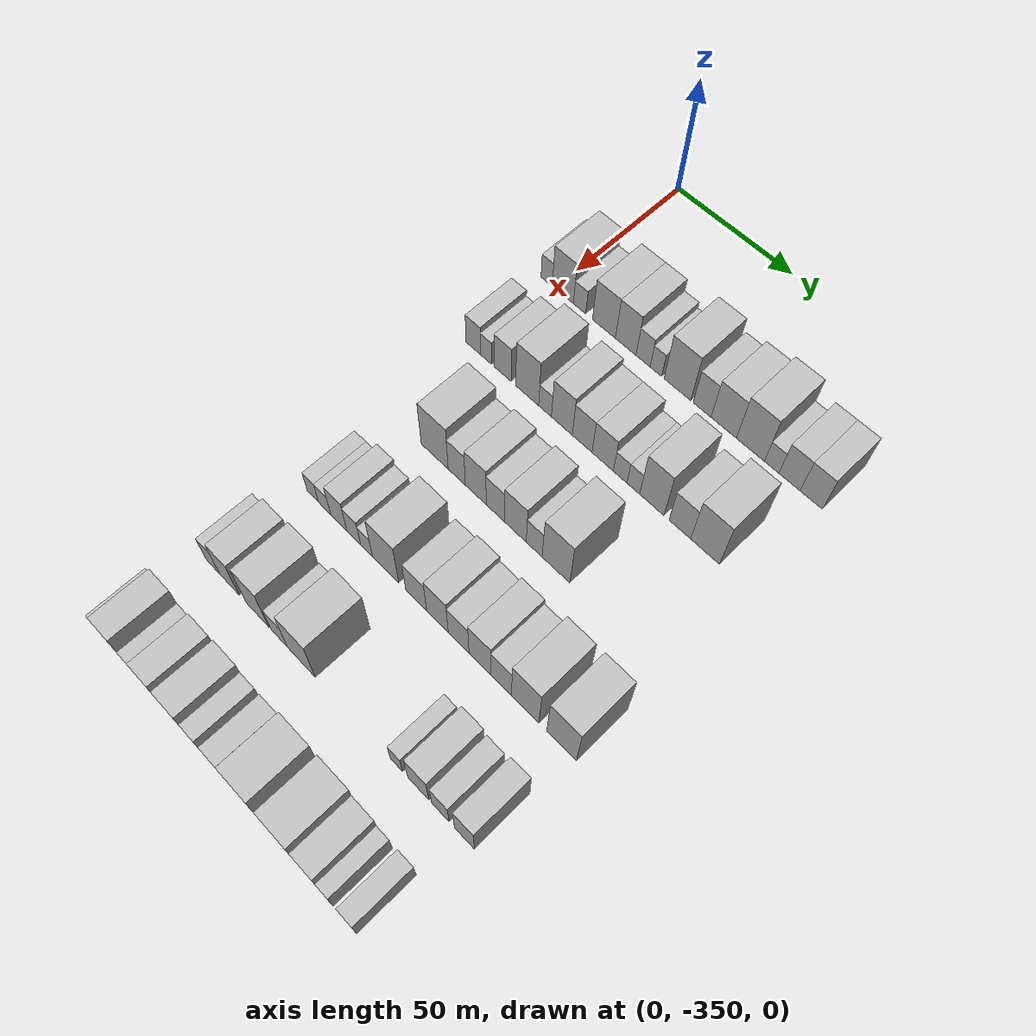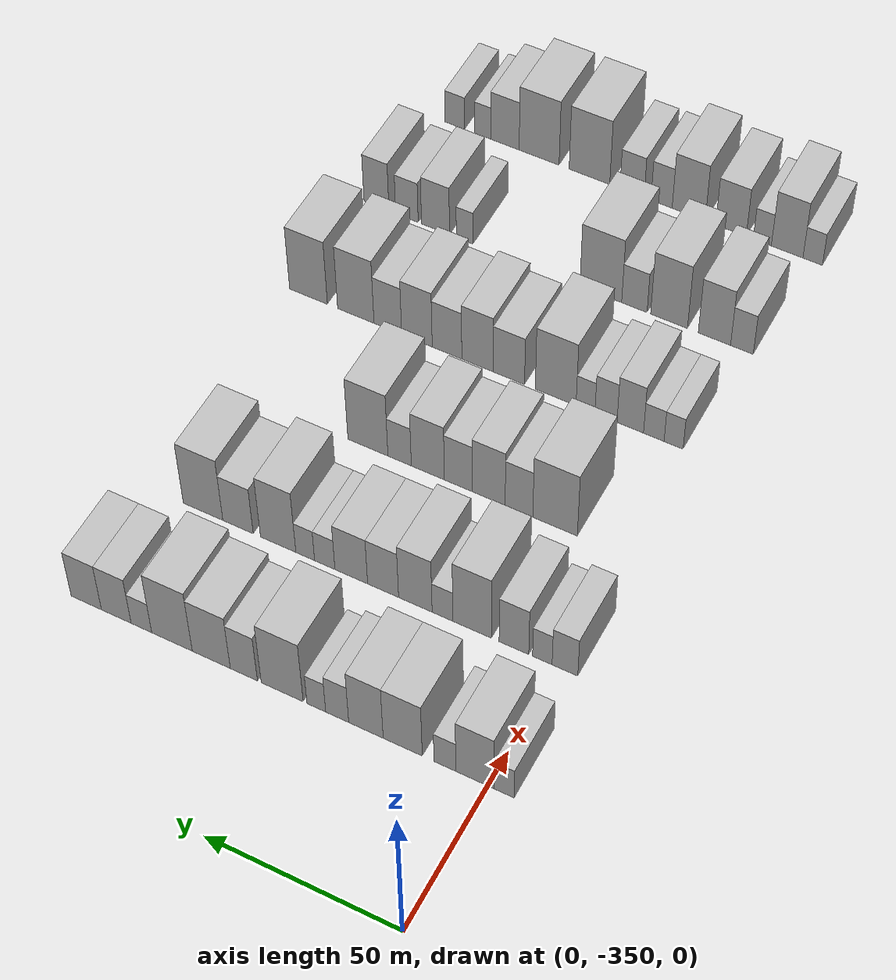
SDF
<sdf version="1.6">
 <world name="default">
  <model name="building_19">
   <static>1</static>
   <pose>50.0000 -353.9644 0 0.000000 0.000000 0.000000</pose>
   <link name="link">
    <pose>0 0 6.00 0 0 0</pose>
    <collision name="collision"><geometry><box><size>20.0000 5.1448 12.0000</size></box></geometry></collision>
    <visual name="visual">
     <cast_shadows>0</cast_shadows>
     <geometry><box><size>20.0000 5.1448 12.0000</size></box></geometry>
     <material>
      <script>
       <uri>model://HANNAS_wall/materials/scripts</uri>
       <uri>model://HANNAS_wall/materials/textures</uri>
       <name>vrc/HANNAS_wall</name>
      </script>
     </material>
    </visual>
   </link>
  </model>
  <model name="building_20">
   <static>1</static>
   <pose>50.0000 -346.6164 0 0.000000 0.000000 0.000000</pose>
   <link name="link">
    <pose>0 0 10.50 0 0 0</pose>
    <collision name="collision"><geometry><box><size>20.0000 9.5511 21.0000</size></box></geometry></collision>
    <visual name="visual">
     <cast_shadows>0</cast_shadows>
     <geometry><box><size>20.0000 9.5511 21.0000</size></box></geometry>
     <material>
      <script>
       <uri>model://HANNAS_wall/materials/scripts</uri>
       <uri>model://HANNAS_wall/materials/textures</uri>
       <name>vrc/HANNAS_wall</name>
      </script>
     </material>
    </visual>
   </link>
  </model>
  <model name="building_21">
   <static>1</static>
   <pose>50.0000 -339.0628 0 0.000000 0.000000 0.000000</pose>
   <link name="link">
    <pose>0 0 6.00 0 0 0</pose>
    <collision name="collision"><geometry><box><size>20.0000 5.5561 12.0000</size></box></geometry></collision>
    <visual name="visual">
     <cast_shadows>0</cast_shadows>
     <geometry><box><size>20.0000 5.5561 12.0000</size></box></geometry>
     <material>
      <script>
       <uri>model://HANNAS_wall/materials/scripts</uri>
       <uri>model://HANNAS_wall/materials/textures</uri>
       <name>vrc/HANNAS_wall</name>
      </script>
     </material>
    </visual>
   </link>
  </model>
  <model name="building_22">
   <static>1</static>
   <pose>50.0000 -328.2652 0 0.000000 0.000000 0.000000</pose>
   <link name="link">
    <pose>0 0 10.50 0 0 0</pose>
    <collision name="collision"><geometry><box><size>20.0000 10.0391 21.0000</size></box></geometry></collision>
    <visual name="visual">
     <cast_shadows>0</cast_shadows>
     <geometry><box><size>20.0000 10.0391 21.0000</size></box></geometry>
     <material>
      <script>
       <uri>model://HANNAS_wall/materials/scripts</uri>
       <uri>model://HANNAS_wall/materials/textures</uri>
       <name>vrc/HANNAS_wall</name>
      </script>
     </material>
    </visual>
   </link>
  </model>
  <model name="building_23">
   <static>1</static>
   <pose>50.0000 -318.7859 0 0.000000 0.000000 0.000000</pose>
   <link name="link">
    <pose>0 0 10.50 0 0 0</pose>
    <collision name="collision"><geometry><box><size>20.0000 8.9194 21.0000</size></box></geometry></collision>
    <visual name="visual">
     <cast_shadows>0</cast_shadows>
     <geometry><box><size>20.0000 8.9194 21.0000</size></box></geometry>
     <material>
      <script>
       <uri>model://HANNAS_wall/materials/scripts</uri>
       <uri>model://HANNAS_wall/materials/textures</uri>
       <name>vrc/HANNAS_wall</name>
      </script>
     </material>
    </visual>
   </link>
  </model>
  <model name="building_24">
   <static>1</static>
   <pose>50.0000 -311.3256 0 0.000000 0.000000 0.000000</pose>
   <link name="link">
    <pose>0 0 7.50 0 0 0</pose>
    <collision name="collision"><geometry><box><size>20.0000 6.0012 15.0000</size></box></geometry></collision>
    <visual name="visual">
     <cast_shadows>0</cast_shadows>
     <geometry><box><size>20.0000 6.0012 15.0000</size></box></geometry>
     <material>
      <script>
       <uri>model://HANNAS_wall/materials/scripts</uri>
       <uri>model://HANNAS_wall/materials/textures</uri>
       <name>vrc/HANNAS_wall</name>
      </script>
     </material>
    </visual>
   </link>
  </model>
  <model name="building_25">
   <static>1</static>
   <pose>50.0000 -305.8745 0 0.000000 0.000000 0.000000</pose>
   <link name="link">
    <pose>0 0 6.00 0 0 0</pose>
    <collision name="collision"><geometry><box><size>20.0000 4.9010 12.0000</size></box></geometry></collision>
    <visual name="visual">
     <cast_shadows>0</cast_shadows>
     <geometry><box><size>20.0000 4.9010 12.0000</size></box></geometry>
     <material>
      <script>
       <uri>model://HANNAS_wall/materials/scripts</uri>
       <uri>model://HANNAS_wall/materials/textures</uri>
       <name>vrc/HANNAS_wall</name>
      </script>
     </material>
    </visual>
   </link>
  </model>
  <model name="building_26">
   <static>1</static>
   <pose>50.0000 -296.8805 0 0.000000 0.000000 0.000000</pose>
   <link name="link">
    <pose>0 0 12.00 0 0 0</pose>
    <collision name="collision"><geometry><box><size>20.0000 11.0871 24.0000</size></box></geometry></collision>
    <visual name="visual">
     <cast_shadows>0</cast_shadows>
     <geometry><box><size>20.0000 11.0871 24.0000</size></box></geometry>
     <material>
      <script>
       <uri>model://HANNAS_wall/materials/scripts</uri>
       <uri>model://HANNAS_wall/materials/textures</uri>
       <name>vrc/HANNAS_wall</name>
      </script>
     </material>
    </visual>
   </link>
  </model>
  <model name="building_27">
   <static>1</static>
   <pose>50.0000 -286.7191 0 0.000000 0.000000 0.000000</pose>
   <link name="link">
    <pose>0 0 9.00 0 0 0</pose>
    <collision name="collision"><geometry><box><size>20.0000 7.2356 18.0000</size></box></geometry></collision>
    <visual name="visual">
     <cast_shadows>0</cast_shadows>
     <geometry><box><size>20.0000 7.2356 18.0000</size></box></geometry>
     <material>
      <script>
       <uri>model://HANNAS_wall/materials/scripts</uri>
       <uri>model://HANNAS_wall/materials/textures</uri>
       <name>vrc/HANNAS_wall</name>
      </script>
     </material>
    </visual>
   </link>
  </model>
  <model name="building_28">
   <static>1</static>
   <pose>50.0000 -277.9937 0 0.000000 0.000000 0.000000</pose>
   <link name="link">
    <pose>0 0 10.50 0 0 0</pose>
    <collision name="collision"><geometry><box><size>20.0000 10.2153 21.0000</size></box></geometry></collision>
    <visual name="visual">
     <cast_shadows>0</cast_shadows>
     <geometry><box><size>20.0000 10.2153 21.0000</size></box></geometry>
     <material>
      <script>
       <uri>model://HANNAS_wall/materials/scripts</uri>
       <uri>model://HANNAS_wall/materials/textures</uri>
       <name>vrc/HANNAS_wall</name>
      </script>
     </material>
    </visual>
   </link>
  </model>
  <model name="building_29">
   <static>1</static>
   <pose>50.0000 -267.3749 0 0.000000 0.000000 0.000000</pose>
   <link name="link">
    <pose>0 0 12.00 0 0 0</pose>
    <collision name="collision"><geometry><box><size>20.0000 11.0223 24.0000</size></box></geometry></collision>
    <visual name="visual">
     <cast_shadows>0</cast_shadows>
     <geometry><box><size>20.0000 11.0223 24.0000</size></box></geometry>
     <material>
      <script>
       <uri>model://HANNAS_wall/materials/scripts</uri>
       <uri>model://HANNAS_wall/materials/textures</uri>
       <name>vrc/HANNAS_wall</name>
      </script>
     </material>
    </visual>
   </link>
  </model>
  <model name="building_30">
   <static>1</static>
   <pose>50.0000 -259.0522 0 0.000000 0.000000 0.000000</pose>
   <link name="link">
    <pose>0 0 6.00 0 0 0</pose>
    <collision name="collision"><geometry><box><size>20.0000 5.6230 12.0000</size></box></geometry></collision>
    <visual name="visual">
     <cast_shadows>0</cast_shadows>
     <geometry><box><size>20.0000 5.6230 12.0000</size></box></geometry>
     <material>
      <script>
       <uri>model://HANNAS_wall/materials/scripts</uri>
       <uri>model://HANNAS_wall/materials/textures</uri>
       <name>vrc/HANNAS_wall</name>
      </script>
     </material>
    </visual>
   </link>
  </model>
  <model name="building_31">
   <static>1</static>
   <pose>50.0000 -252.1641 0 0.000000 0.000000 0.000000</pose>
   <link name="link">
    <pose>0 0 9.00 0 0 0</pose>
    <collision name="collision"><geometry><box><size>20.0000 8.1533 18.0000</size></box></geometry></collision>
    <visual name="visual">
     <cast_shadows>0</cast_shadows>
     <geometry><box><size>20.0000 8.1533 18.0000</size></box></geometry>
     <material>
      <script>
       <uri>model://HANNAS_wall/materials/scripts</uri>
       <uri>model://HANNAS_wall/materials/textures</uri>
       <name>vrc/HANNAS_wall</name>
      </script>
     </material>
    </visual>
   </link>
  </model>
  <model name="building_32">
   <static>1</static>
   <pose>50.0000 -243.8982 0 0.000000 0.000000 0.000000</pose>
   <link name="link">
    <pose>0 0 9.00 0 0 0</pose>
    <collision name="collision"><geometry><box><size>20.0000 8.3785 18.0000</size></box></geometry></collision>
    <visual name="visual">
     <cast_shadows>0</cast_shadows>
     <geometry><box><size>20.0000 8.3785 18.0000</size></box></geometry>
     <material>
      <script>
       <uri>model://HANNAS_wall/materials/scripts</uri>
       <uri>model://HANNAS_wall/materials/textures</uri>
       <name>vrc/HANNAS_wall</name>
      </script>
     </material>
    </visual>
   </link>
  </model>
  <model name="building_150">
   <static>1</static>
   <pose>85.0000 -351.8388 0 0.000000 0.000000 0.000000</pose>
   <link name="link">
    <pose>0 0 7.50 0 0 0</pose>
    <collision name="collision"><geometry><box><size>20.0000 6.6140 15.0000</size></box></geometry></collision>
    <visual name="visual">
     <cast_shadows>0</cast_shadows>
     <geometry><box><size>20.0000 6.6140 15.0000</size></box></geometry>
     <material>
      <script>
       <uri>model://HANNAS_wall/materials/scripts</uri>
       <uri>model://HANNAS_wall/materials/textures</uri>
       <name>vrc/HANNAS_wall</name>
      </script>
     </material>
    </visual>
   </link>
  </model>
  <model name="building_151">
   <static>1</static>
   <pose>85.0000 -346.0177 0 0.000000 0.000000 0.000000</pose>
   <link name="link">
    <pose>0 0 6.00 0 0 0</pose>
    <collision name="collision"><geometry><box><size>20.0000 5.0283 12.0000</size></box></geometry></collision>
    <visual name="visual">
     <cast_shadows>0</cast_shadows>
     <geometry><box><size>20.0000 5.0283 12.0000</size></box></geometry>
     <material>
      <script>
       <uri>model://HANNAS_wall/materials/scripts</uri>
       <uri>model://HANNAS_wall/materials/textures</uri>
       <name>vrc/HANNAS_wall</name>
      </script>
     </material>
    </visual>
   </link>
  </model>
  <model name="building_152">
   <static>1</static>
   <pose>85.0000 -338.6510 0 0.000000 0.000000 0.000000</pose>
   <link name="link">
    <pose>0 0 9.00 0 0 0</pose>
    <collision name="collision"><geometry><box><size>20.0000 7.7050 18.0000</size></box></geometry></collision>
    <visual name="visual">
     <cast_shadows>0</cast_shadows>
     <geometry><box><size>20.0000 7.7050 18.0000</size></box></geometry>
     <material>
      <script>
       <uri>model://HANNAS_wall/materials/scripts</uri>
       <uri>model://HANNAS_wall/materials/textures</uri>
       <name>vrc/HANNAS_wall</name>
      </script>
     </material>
    </visual>
   </link>
  </model>
  <model name="building_153">
   <static>1</static>
   <pose>85.0000 -327.7500 0 0.000000 0.000000 0.000000</pose>
   <link name="link">
    <pose>0 0 12.00 0 0 0</pose>
    <collision name="collision"><geometry><box><size>20.0000 10.0971 24.0000</size></box></geometry></collision>
    <visual name="visual">
     <cast_shadows>0</cast_shadows>
     <geometry><box><size>20.0000 10.0971 24.0000</size></box></geometry>
     <material>
      <script>
       <uri>model://HANNAS_wall/materials/scripts</uri>
       <uri>model://HANNAS_wall/materials/textures</uri>
       <name>vrc/HANNAS_wall</name>
      </script>
     </material>
    </visual>
   </link>
  </model>
  <model name="building_154">
   <static>1</static>
   <pose>85.0000 -319.9447 0 0.000000 0.000000 0.000000</pose>
   <link name="link">
    <pose>0 0 6.00 0 0 0</pose>
    <collision name="collision"><geometry><box><size>20.0000 5.5135 12.0000</size></box></geometry></collision>
    <visual name="visual">
     <cast_shadows>0</cast_shadows>
     <geometry><box><size>20.0000 5.5135 12.0000</size></box></geometry>
     <material>
      <script>
       <uri>model://HANNAS_wall/materials/scripts</uri>
       <uri>model://HANNAS_wall/materials/textures</uri>
       <name>vrc/HANNAS_wall</name>
      </script>
     </material>
    </visual>
   </link>
  </model>
  <model name="building_155">
   <static>1</static>
   <pose>85.0000 -312.7263 0 0.000000 0.000000 0.000000</pose>
   <link name="link">
    <pose>0 0 10.50 0 0 0</pose>
    <collision name="collision"><geometry><box><size>20.0000 8.9234 21.0000</size></box></geometry></collision>
    <visual name="visual">
     <cast_shadows>0</cast_shadows>
     <geometry><box><size>20.0000 8.9234 21.0000</size></box></geometry>
     <material>
      <script>
       <uri>model://HANNAS_wall/materials/scripts</uri>
       <uri>model://HANNAS_wall/materials/textures</uri>
       <name>vrc/HANNAS_wall</name>
      </script>
     </material>
    </visual>
   </link>
  </model>
  <model name="building_156">
   <static>1</static>
   <pose>85.0000 -304.1106 0 0.000000 0.000000 0.000000</pose>
   <link name="link">
    <pose>0 0 9.00 0 0 0</pose>
    <collision name="collision"><geometry><box><size>20.0000 8.3079 18.0000</size></box></geometry></collision>
    <visual name="visual">
     <cast_shadows>0</cast_shadows>
     <geometry><box><size>20.0000 8.3079 18.0000</size></box></geometry>
     <material>
      <script>
       <uri>model://HANNAS_wall/materials/scripts</uri>
       <uri>model://HANNAS_wall/materials/textures</uri>
       <name>vrc/HANNAS_wall</name>
      </script>
     </material>
    </visual>
   </link>
  </model>
  <model name="building_157">
   <static>1</static>
   <pose>85.0000 -295.5395 0 0.000000 0.000000 0.000000</pose>
   <link name="link">
    <pose>0 0 9.00 0 0 0</pose>
    <collision name="collision"><geometry><box><size>20.0000 8.8343 18.0000</size></box></geometry></collision>
    <visual name="visual">
     <cast_shadows>0</cast_shadows>
     <geometry><box><size>20.0000 8.8343 18.0000</size></box></geometry>
     <material>
      <script>
       <uri>model://HANNAS_wall/materials/scripts</uri>
       <uri>model://HANNAS_wall/materials/textures</uri>
       <name>vrc/HANNAS_wall</name>
      </script>
     </material>
    </visual>
   </link>
  </model>
  <model name="building_158">
   <static>1</static>
   <pose>85.0000 -288.3594 0 0.000000 0.000000 0.000000</pose>
   <link name="link">
    <pose>0 0 6.00 0 0 0</pose>
    <collision name="collision"><geometry><box><size>20.0000 5.5260 12.0000</size></box></geometry></collision>
    <visual name="visual">
     <cast_shadows>0</cast_shadows>
     <geometry><box><size>20.0000 5.5260 12.0000</size></box></geometry>
     <material>
      <script>
       <uri>model://HANNAS_wall/materials/scripts</uri>
       <uri>model://HANNAS_wall/materials/textures</uri>
       <name>vrc/HANNAS_wall</name>
      </script>
     </material>
    </visual>
   </link>
  </model>
  <model name="building_159">
   <static>1</static>
   <pose>85.0000 -283.0335 0 0.000000 0.000000 0.000000</pose>
   <link name="link">
    <pose>0 0 6.00 0 0 0</pose>
    <collision name="collision"><geometry><box><size>20.0000 5.1257 12.0000</size></box></geometry></collision>
    <visual name="visual">
     <cast_shadows>0</cast_shadows>
     <geometry><box><size>20.0000 5.1257 12.0000</size></box></geometry>
     <material>
      <script>
       <uri>model://HANNAS_wall/materials/scripts</uri>
       <uri>model://HANNAS_wall/materials/textures</uri>
       <name>vrc/HANNAS_wall</name>
      </script>
     </material>
    </visual>
   </link>
  </model>
  <model name="building_160">
   <static>1</static>
   <pose>85.0000 -275.6094 0 0.000000 0.000000 0.000000</pose>
   <link name="link">
    <pose>0 0 12.00 0 0 0</pose>
    <collision name="collision"><geometry><box><size>20.0000 9.7226 24.0000</size></box></geometry></collision>
    <visual name="visual">
     <cast_shadows>0</cast_shadows>
     <geometry><box><size>20.0000 9.7226 24.0000</size></box></geometry>
     <material>
      <script>
       <uri>model://HANNAS_wall/materials/scripts</uri>
       <uri>model://HANNAS_wall/materials/textures</uri>
       <name>vrc/HANNAS_wall</name>
      </script>
     </material>
    </visual>
   </link>
  </model>
  <model name="building_161">
   <static>1</static>
   <pose>85.0000 -264.5301 0 0.000000 0.000000 0.000000</pose>
   <link name="link">
    <pose>0 0 9.00 0 0 0</pose>
    <collision name="collision"><geometry><box><size>20.0000 8.4359 18.0000</size></box></geometry></collision>
    <visual name="visual">
     <cast_shadows>0</cast_shadows>
     <geometry><box><size>20.0000 8.4359 18.0000</size></box></geometry>
     <material>
      <script>
       <uri>model://HANNAS_wall/materials/scripts</uri>
       <uri>model://HANNAS_wall/materials/textures</uri>
       <name>vrc/HANNAS_wall</name>
      </script>
     </material>
    </visual>
   </link>
  </model>
  <model name="building_162">
   <static>1</static>
   <pose>85.0000 -254.7841 0 0.000000 0.000000 0.000000</pose>
   <link name="link">
    <pose>0 0 12.00 0 0 0</pose>
    <collision name="collision"><geometry><box><size>20.0000 11.0560 24.0000</size></box></geometry></collision>
    <visual name="visual">
     <cast_shadows>0</cast_shadows>
     <geometry><box><size>20.0000 11.0560 24.0000</size></box></geometry>
     <material>
      <script>
       <uri>model://HANNAS_wall/materials/scripts</uri>
       <uri>model://HANNAS_wall/materials/textures</uri>
       <name>vrc/HANNAS_wall</name>
      </script>
     </material>
    </visual>
   </link>
  </model>
  <model name="building_274">
   <static>1</static>
   <pose>120.0000 -331.8995 0 0.000000 0.000000 0.000000</pose>
   <link name="link">
    <pose>0 0 12.00 0 0 0</pose>
    <collision name="collision"><geometry><box><size>20.0000 11.9229 24.0000</size></box></geometry></collision>
    <visual name="visual">
     <cast_shadows>0</cast_shadows>
     <geometry><box><size>20.0000 11.9229 24.0000</size></box></geometry>
     <material>
      <script>
       <uri>model://HANNAS_wall/materials/scripts</uri>
       <uri>model://HANNAS_wall/materials/textures</uri>
       <name>vrc/HANNAS_wall</name>
      </script>
     </material>
    </visual>
   </link>
  </model>
  <model name="building_275">
   <static>1</static>
   <pose>120.0000 -322.2136 0 0.000000 0.000000 0.000000</pose>
   <link name="link">
    <pose>0 0 9.00 0 0 0</pose>
    <collision name="collision"><geometry><box><size>20.0000 7.4489 18.0000</size></box></geometry></collision>
    <visual name="visual">
     <cast_shadows>0</cast_shadows>
     <geometry><box><size>20.0000 7.4489 18.0000</size></box></geometry>
     <material>
      <script>
       <uri>model://HANNAS_wall/materials/scripts</uri>
       <uri>model://HANNAS_wall/materials/textures</uri>
       <name>vrc/HANNAS_wall</name>
      </script>
     </material>
    </visual>
   </link>
  </model>
  <model name="building_276">
   <static>1</static>
   <pose>120.0000 -314.0083 0 0.000000 0.000000 0.000000</pose>
   <link name="link">
    <pose>0 0 10.50 0 0 0</pose>
    <collision name="collision"><geometry><box><size>20.0000 8.9616 21.0000</size></box></geometry></collision>
    <visual name="visual">
     <cast_shadows>0</cast_shadows>
     <geometry><box><size>20.0000 8.9616 21.0000</size></box></geometry>
     <material>
      <script>
       <uri>model://HANNAS_wall/materials/scripts</uri>
       <uri>model://HANNAS_wall/materials/textures</uri>
       <name>vrc/HANNAS_wall</name>
      </script>
     </material>
    </visual>
   </link>
  </model>
  <model name="building_277">
   <static>1</static>
   <pose>120.0000 -305.7389 0 0.000000 0.000000 0.000000</pose>
   <link name="link">
    <pose>0 0 9.00 0 0 0</pose>
    <collision name="collision"><geometry><box><size>20.0000 7.5772 18.0000</size></box></geometry></collision>
    <visual name="visual">
     <cast_shadows>0</cast_shadows>
     <geometry><box><size>20.0000 7.5772 18.0000</size></box></geometry>
     <material>
      <script>
       <uri>model://HANNAS_wall/materials/scripts</uri>
       <uri>model://HANNAS_wall/materials/textures</uri>
       <name>vrc/HANNAS_wall</name>
      </script>
     </material>
    </visual>
   </link>
  </model>
  <model name="building_278">
   <static>1</static>
   <pose>120.0000 -297.3888 0 0.000000 0.000000 0.000000</pose>
   <link name="link">
    <pose>0 0 10.50 0 0 0</pose>
    <collision name="collision"><geometry><box><size>20.0000 9.1230 21.0000</size></box></geometry></collision>
    <visual name="visual">
     <cast_shadows>0</cast_shadows>
     <geometry><box><size>20.0000 9.1230 21.0000</size></box></geometry>
     <material>
      <script>
       <uri>model://HANNAS_wall/materials/scripts</uri>
       <uri>model://HANNAS_wall/materials/textures</uri>
       <name>vrc/HANNAS_wall</name>
      </script>
     </material>
    </visual>
   </link>
  </model>
  <model name="building_279">
   <static>1</static>
   <pose>120.0000 -289.5791 0 0.000000 0.000000 0.000000</pose>
   <link name="link">
    <pose>0 0 7.50 0 0 0</pose>
    <collision name="collision"><geometry><box><size>20.0000 6.4964 15.0000</size></box></geometry></collision>
    <visual name="visual">
     <cast_shadows>0</cast_shadows>
     <geometry><box><size>20.0000 6.4964 15.0000</size></box></geometry>
     <material>
      <script>
       <uri>model://HANNAS_wall/materials/scripts</uri>
       <uri>model://HANNAS_wall/materials/textures</uri>
       <name>vrc/HANNAS_wall</name>
      </script>
     </material>
    </visual>
   </link>
  </model>
  <model name="building_280">
   <static>1</static>
   <pose>120.0000 -280.7509 0 0.000000 0.000000 0.000000</pose>
   <link name="link">
    <pose>0 0 12.00 0 0 0</pose>
    <collision name="collision"><geometry><box><size>20.0000 11.1599 24.0000</size></box></geometry></collision>
    <visual name="visual">
     <cast_shadows>0</cast_shadows>
     <geometry><box><size>20.0000 11.1599 24.0000</size></box></geometry>
     <material>
      <script>
       <uri>model://HANNAS_wall/materials/scripts</uri>
       <uri>model://HANNAS_wall/materials/textures</uri>
       <name>vrc/HANNAS_wall</name>
      </script>
     </material>
    </visual>
   </link>
  </model>
  <model name="building_396">
   <static>1</static>
   <pose>155.0000 -346.9445 0 0.000000 0.000000 0.000000</pose>
   <link name="link">
    <pose>0 0 6.00 0 0 0</pose>
    <collision name="collision"><geometry><box><size>20.0000 5.1278 12.0000</size></box></geometry></collision>
    <visual name="visual">
     <cast_shadows>0</cast_shadows>
     <geometry><box><size>20.0000 5.1278 12.0000</size></box></geometry>
     <material>
      <script>
       <uri>model://HANNAS_wall/materials/scripts</uri>
       <uri>model://HANNAS_wall/materials/textures</uri>
       <name>vrc/HANNAS_wall</name>
      </script>
     </material>
    </visual>
   </link>
  </model>
  <model name="building_397">
   <static>1</static>
   <pose>155.0000 -341.5956 0 0.000000 0.000000 0.000000</pose>
   <link name="link">
    <pose>0 0 6.00 0 0 0</pose>
    <collision name="collision"><geometry><box><size>20.0000 5.5701 12.0000</size></box></geometry></collision>
    <visual name="visual">
     <cast_shadows>0</cast_shadows>
     <geometry><box><size>20.0000 5.5701 12.0000</size></box></geometry>
     <material>
      <script>
       <uri>model://HANNAS_wall/materials/scripts</uri>
       <uri>model://HANNAS_wall/materials/textures</uri>
       <name>vrc/HANNAS_wall</name>
      </script>
     </material>
    </visual>
   </link>
  </model>
  <model name="building_398">
   <static>1</static>
   <pose>155.0000 -335.1966 0 0.000000 0.000000 0.000000</pose>
   <link name="link">
    <pose>0 0 9.00 0 0 0</pose>
    <collision name="collision"><geometry><box><size>20.0000 7.2279 18.0000</size></box></geometry></collision>
    <visual name="visual">
     <cast_shadows>0</cast_shadows>
     <geometry><box><size>20.0000 7.2279 18.0000</size></box></geometry>
     <material>
      <script>
       <uri>model://HANNAS_wall/materials/scripts</uri>
       <uri>model://HANNAS_wall/materials/textures</uri>
       <name>vrc/HANNAS_wall</name>
      </script>
     </material>
    </visual>
   </link>
  </model>
  <model name="building_399">
   <static>1</static>
   <pose>155.0000 -328.5461 0 0.000000 0.000000 0.000000</pose>
   <link name="link">
    <pose>0 0 7.50 0 0 0</pose>
    <collision name="collision"><geometry><box><size>20.0000 6.0731 15.0000</size></box></geometry></collision>
    <visual name="visual">
     <cast_shadows>0</cast_shadows>
     <geometry><box><size>20.0000 6.0731 15.0000</size></box></geometry>
     <material>
      <script>
       <uri>model://HANNAS_wall/materials/scripts</uri>
       <uri>model://HANNAS_wall/materials/textures</uri>
       <name>vrc/HANNAS_wall</name>
      </script>
     </material>
    </visual>
   </link>
  </model>
  <model name="building_400">
   <static>1</static>
   <pose>155.0000 -322.9132 0 0.000000 0.000000 0.000000</pose>
   <link name="link">
    <pose>0 0 6.00 0 0 0</pose>
    <collision name="collision"><geometry><box><size>20.0000 5.1927 12.0000</size></box></geometry></collision>
    <visual name="visual">
     <cast_shadows>0</cast_shadows>
     <geometry><box><size>20.0000 5.1927 12.0000</size></box></geometry>
     <material>
      <script>
       <uri>model://HANNAS_wall/materials/scripts</uri>
       <uri>model://HANNAS_wall/materials/textures</uri>
       <name>vrc/HANNAS_wall</name>
      </script>
     </material>
    </visual>
   </link>
  </model>
  <model name="building_401">
   <static>1</static>
   <pose>155.0000 -314.6764 0 0.000000 0.000000 0.000000</pose>
   <link name="link">
    <pose>0 0 12.00 0 0 0</pose>
    <collision name="collision"><geometry><box><size>20.0000 11.2809 24.0000</size></box></geometry></collision>
    <visual name="visual">
     <cast_shadows>0</cast_shadows>
     <geometry><box><size>20.0000 11.2809 24.0000</size></box></geometry>
     <material>
      <script>
       <uri>model://HANNAS_wall/materials/scripts</uri>
       <uri>model://HANNAS_wall/materials/textures</uri>
       <name>vrc/HANNAS_wall</name>
      </script>
     </material>
    </visual>
   </link>
  </model>
  <model name="building_402">
   <static>1</static>
   <pose>155.0000 -301.6490 0 0.000000 0.000000 0.000000</pose>
   <link name="link">
    <pose>0 0 9.00 0 0 0</pose>
    <collision name="collision"><geometry><box><size>20.0000 8.7740 18.0000</size></box></geometry></collision>
    <visual name="visual">
     <cast_shadows>0</cast_shadows>
     <geometry><box><size>20.0000 8.7740 18.0000</size></box></geometry>
     <material>
      <script>
       <uri>model://HANNAS_wall/materials/scripts</uri>
       <uri>model://HANNAS_wall/materials/textures</uri>
       <name>vrc/HANNAS_wall</name>
      </script>
     </material>
    </visual>
   </link>
  </model>
  <model name="building_403">
   <static>1</static>
   <pose>155.0000 -292.8273 0 0.000000 0.000000 0.000000</pose>
   <link name="link">
    <pose>0 0 10.50 0 0 0</pose>
    <collision name="collision"><geometry><box><size>20.0000 8.8694 21.0000</size></box></geometry></collision>
    <visual name="visual">
     <cast_shadows>0</cast_shadows>
     <geometry><box><size>20.0000 8.8694 21.0000</size></box></geometry>
     <material>
      <script>
       <uri>model://HANNAS_wall/materials/scripts</uri>
       <uri>model://HANNAS_wall/materials/textures</uri>
       <name>vrc/HANNAS_wall</name>
      </script>
     </material>
    </visual>
   </link>
  </model>
  <model name="building_404">
   <static>1</static>
   <pose>155.0000 -284.1888 0 0.000000 0.000000 0.000000</pose>
   <link name="link">
    <pose>0 0 9.00 0 0 0</pose>
    <collision name="collision"><geometry><box><size>20.0000 8.4075 18.0000</size></box></geometry></collision>
    <visual name="visual">
     <cast_shadows>0</cast_shadows>
     <geometry><box><size>20.0000 8.4075 18.0000</size></box></geometry>
     <material>
      <script>
       <uri>model://HANNAS_wall/materials/scripts</uri>
       <uri>model://HANNAS_wall/materials/textures</uri>
       <name>vrc/HANNAS_wall</name>
      </script>
     </material>
    </visual>
   </link>
  </model>
  <model name="building_405">
   <static>1</static>
   <pose>155.0000 -275.6095 0 0.000000 0.000000 0.000000</pose>
   <link name="link">
    <pose>0 0 10.50 0 0 0</pose>
    <collision name="collision"><geometry><box><size>20.0000 8.7512 21.0000</size></box></geometry></collision>
    <visual name="visual">
     <cast_shadows>0</cast_shadows>
     <geometry><box><size>20.0000 8.7512 21.0000</size></box></geometry>
     <material>
      <script>
       <uri>model://HANNAS_wall/materials/scripts</uri>
       <uri>model://HANNAS_wall/materials/textures</uri>
       <name>vrc/HANNAS_wall</name>
      </script>
     </material>
    </visual>
   </link>
  </model>
  <model name="building_406">
   <static>1</static>
   <pose>155.0000 -267.2447 0 0.000000 0.000000 0.000000</pose>
   <link name="link">
    <pose>0 0 9.00 0 0 0</pose>
    <collision name="collision"><geometry><box><size>20.0000 7.9783 18.0000</size></box></geometry></collision>
    <visual name="visual">
     <cast_shadows>0</cast_shadows>
     <geometry><box><size>20.0000 7.9783 18.0000</size></box></geometry>
     <material>
      <script>
       <uri>model://HANNAS_wall/materials/scripts</uri>
       <uri>model://HANNAS_wall/materials/textures</uri>
       <name>vrc/HANNAS_wall</name>
      </script>
     </material>
    </visual>
   </link>
  </model>
  <model name="building_407">
   <static>1</static>
   <pose>155.0000 -257.9760 0 0.000000 0.000000 0.000000</pose>
   <link name="link">
    <pose>0 0 12.00 0 0 0</pose>
    <collision name="collision"><geometry><box><size>20.0000 10.5592 24.0000</size></box></geometry></collision>
    <visual name="visual">
     <cast_shadows>0</cast_shadows>
     <geometry><box><size>20.0000 10.5592 24.0000</size></box></geometry>
     <material>
      <script>
       <uri>model://HANNAS_wall/materials/scripts</uri>
       <uri>model://HANNAS_wall/materials/textures</uri>
       <name>vrc/HANNAS_wall</name>
      </script>
     </material>
    </visual>
   </link>
  </model>
  <model name="building_408">
   <static>1</static>
   <pose>155.0000 -244.1624 0 0.000000 0.000000 0.000000</pose>
   <link name="link">
    <pose>0 0 12.00 0 0 0</pose>
    <collision name="collision"><geometry><box><size>20.0000 11.0680 24.0000</size></box></geometry></collision>
    <visual name="visual">
     <cast_shadows>0</cast_shadows>
     <geometry><box><size>20.0000 11.0680 24.0000</size></box></geometry>
     <material>
      <script>
       <uri>model://HANNAS_wall/materials/scripts</uri>
       <uri>model://HANNAS_wall/materials/textures</uri>
       <name>vrc/HANNAS_wall</name>
      </script>
     </material>
    </visual>
   </link>
  </model>
  <model name="building_519">
   <static>1</static>
   <pose>190.0000 -349.6428 0 0.000000 0.000000 0.000000</pose>
   <link name="link">
    <pose>0 0 7.50 0 0 0</pose>
    <collision name="collision"><geometry><box><size>20.0000 6.2556 15.0000</size></box></geometry></collision>
    <visual name="visual">
     <cast_shadows>0</cast_shadows>
     <geometry><box><size>20.0000 6.2556 15.0000</size></box></geometry>
     <material>
      <script>
       <uri>model://HANNAS_wall/materials/scripts</uri>
       <uri>model://HANNAS_wall/materials/textures</uri>
       <name>vrc/HANNAS_wall</name>
      </script>
     </material>
    </visual>
   </link>
  </model>
  <model name="building_520">
   <static>1</static>
   <pose>190.0000 -342.0464 0 0.000000 0.000000 0.000000</pose>
   <link name="link">
    <pose>0 0 10.50 0 0 0</pose>
    <collision name="collision"><geometry><box><size>20.0000 8.9371 21.0000</size></box></geometry></collision>
    <visual name="visual">
     <cast_shadows>0</cast_shadows>
     <geometry><box><size>20.0000 8.9371 21.0000</size></box></geometry>
     <material>
      <script>
       <uri>model://HANNAS_wall/materials/scripts</uri>
       <uri>model://HANNAS_wall/materials/textures</uri>
       <name>vrc/HANNAS_wall</name>
      </script>
     </material>
    </visual>
   </link>
  </model>
  <model name="building_521">
   <static>1</static>
   <pose>190.0000 -329.4251 0 0.000000 0.000000 0.000000</pose>
   <link name="link">
    <pose>0 0 12.00 0 0 0</pose>
    <collision name="collision"><geometry><box><size>20.0000 10.3054 24.0000</size></box></geometry></collision>
    <visual name="visual">
     <cast_shadows>0</cast_shadows>
     <geometry><box><size>20.0000 10.3054 24.0000</size></box></geometry>
     <material>
      <script>
       <uri>model://HANNAS_wall/materials/scripts</uri>
       <uri>model://HANNAS_wall/materials/textures</uri>
       <name>vrc/HANNAS_wall</name>
      </script>
     </material>
    </visual>
   </link>
  </model>
  <model name="building_522">
   <static>1</static>
   <pose>190.0000 -319.6870 0 0.000000 0.000000 0.000000</pose>
   <link name="link">
    <pose>0 0 7.50 0 0 0</pose>
    <collision name="collision"><geometry><box><size>20.0000 7.1708 15.0000</size></box></geometry></collision>
    <visual name="visual">
     <cast_shadows>0</cast_shadows>
     <geometry><box><size>20.0000 7.1708 15.0000</size></box></geometry>
     <material>
      <script>
       <uri>model://HANNAS_wall/materials/scripts</uri>
       <uri>model://HANNAS_wall/materials/textures</uri>
       <name>vrc/HANNAS_wall</name>
      </script>
     </material>
    </visual>
   </link>
  </model>
  <model name="building_523">
   <static>1</static>
   <pose>190.0000 -310.1738 0 0.000000 0.000000 0.000000</pose>
   <link name="link">
    <pose>0 0 12.00 0 0 0</pose>
    <collision name="collision"><geometry><box><size>20.0000 11.8557 24.0000</size></box></geometry></collision>
    <visual name="visual">
     <cast_shadows>0</cast_shadows>
     <geometry><box><size>20.0000 11.8557 24.0000</size></box></geometry>
     <material>
      <script>
       <uri>model://HANNAS_wall/materials/scripts</uri>
       <uri>model://HANNAS_wall/materials/textures</uri>
       <name>vrc/HANNAS_wall</name>
      </script>
     </material>
    </visual>
   </link>
  </model>
  <model name="building_524">
   <static>1</static>
   <pose>190.0000 -270.9185 0 0.000000 0.000000 0.000000</pose>
   <link name="link">
    <pose>0 0 6.00 0 0 0</pose>
    <collision name="collision"><geometry><box><size>20.0000 4.8850 12.0000</size></box></geometry></collision>
    <visual name="visual">
     <cast_shadows>0</cast_shadows>
     <geometry><box><size>20.0000 4.8850 12.0000</size></box></geometry>
     <material>
      <script>
       <uri>model://HANNAS_wall/materials/scripts</uri>
       <uri>model://HANNAS_wall/materials/textures</uri>
       <name>vrc/HANNAS_wall</name>
      </script>
     </material>
    </visual>
   </link>
  </model>
  <model name="building_525">
   <static>1</static>
   <pose>190.0000 -262.3436 0 0.000000 0.000000 0.000000</pose>
   <link name="link">
    <pose>0 0 9.00 0 0 0</pose>
    <collision name="collision"><geometry><box><size>20.0000 8.2649 18.0000</size></box></geometry></collision>
    <visual name="visual">
     <cast_shadows>0</cast_shadows>
     <geometry><box><size>20.0000 8.2649 18.0000</size></box></geometry>
     <material>
      <script>
       <uri>model://HANNAS_wall/materials/scripts</uri>
       <uri>model://HANNAS_wall/materials/textures</uri>
       <name>vrc/HANNAS_wall</name>
      </script>
     </material>
    </visual>
   </link>
  </model>
  <model name="building_526">
   <static>1</static>
   <pose>190.0000 -253.8655 0 0.000000 0.000000 0.000000</pose>
   <link name="link">
    <pose>0 0 7.50 0 0 0</pose>
    <collision name="collision"><geometry><box><size>20.0000 6.6913 15.0000</size></box></geometry></collision>
    <visual name="visual">
     <cast_shadows>0</cast_shadows>
     <geometry><box><size>20.0000 6.6913 15.0000</size></box></geometry>
     <material>
      <script>
       <uri>model://HANNAS_wall/materials/scripts</uri>
       <uri>model://HANNAS_wall/materials/textures</uri>
       <name>vrc/HANNAS_wall</name>
      </script>
     </material>
    </visual>
   </link>
  </model>
  <model name="building_527">
   <static>1</static>
   <pose>190.0000 -244.7907 0 0.000000 0.000000 0.000000</pose>
   <link name="link">
    <pose>0 0 9.00 0 0 0</pose>
    <collision name="collision"><geometry><box><size>20.0000 7.4584 18.0000</size></box></geometry></collision>
    <visual name="visual">
     <cast_shadows>0</cast_shadows>
     <geometry><box><size>20.0000 7.4584 18.0000</size></box></geometry>
     <material>
      <script>
       <uri>model://HANNAS_wall/materials/scripts</uri>
       <uri>model://HANNAS_wall/materials/textures</uri>
       <name>vrc/HANNAS_wall</name>
      </script>
     </material>
    </visual>
   </link>
  </model>
  <model name="building_647">
   <static>1</static>
   <pose>225.0000 -354.0320 0 0.000000 0.000000 0.000000</pose>
   <link name="link">
    <pose>0 0 6.00 0 0 0</pose>
    <collision name="collision"><geometry><box><size>20.0000 5.4624 12.0000</size></box></geometry></collision>
    <visual name="visual">
     <cast_shadows>0</cast_shadows>
     <geometry><box><size>20.0000 5.4624 12.0000</size></box></geometry>
     <material>
      <script>
       <uri>model://HANNAS_wall/materials/scripts</uri>
       <uri>model://HANNAS_wall/materials/textures</uri>
       <name>vrc/HANNAS_wall</name>
      </script>
     </material>
    </visual>
   </link>
  </model>
  <model name="building_648">
   <static>1</static>
   <pose>225.0000 -346.8407 0 0.000000 0.000000 0.000000</pose>
   <link name="link">
    <pose>0 0 10.50 0 0 0</pose>
    <collision name="collision"><geometry><box><size>20.0000 8.9201 21.0000</size></box></geometry></collision>
    <visual name="visual">
     <cast_shadows>0</cast_shadows>
     <geometry><box><size>20.0000 8.9201 21.0000</size></box></geometry>
     <material>
      <script>
       <uri>model://HANNAS_wall/materials/scripts</uri>
       <uri>model://HANNAS_wall/materials/textures</uri>
       <name>vrc/HANNAS_wall</name>
      </script>
     </material>
    </visual>
   </link>
  </model>
  <model name="building_649">
   <static>1</static>
   <pose>225.0000 -339.8274 0 0.000000 0.000000 0.000000</pose>
   <link name="link">
    <pose>0 0 6.00 0 0 0</pose>
    <collision name="collision"><geometry><box><size>20.0000 5.1066 12.0000</size></box></geometry></collision>
    <visual name="visual">
     <cast_shadows>0</cast_shadows>
     <geometry><box><size>20.0000 5.1066 12.0000</size></box></geometry>
     <material>
      <script>
       <uri>model://HANNAS_wall/materials/scripts</uri>
       <uri>model://HANNAS_wall/materials/textures</uri>
       <name>vrc/HANNAS_wall</name>
      </script>
     </material>
    </visual>
   </link>
  </model>
  <model name="building_650">
   <static>1</static>
   <pose>225.0000 -330.9174 0 0.000000 0.000000 0.000000</pose>
   <link name="link">
    <pose>0 0 9.00 0 0 0</pose>
    <collision name="collision"><geometry><box><size>20.0000 8.7136 18.0000</size></box></geometry></collision>
    <visual name="visual">
     <cast_shadows>0</cast_shadows>
     <geometry><box><size>20.0000 8.7136 18.0000</size></box></geometry>
     <material>
      <script>
       <uri>model://HANNAS_wall/materials/scripts</uri>
       <uri>model://HANNAS_wall/materials/textures</uri>
       <name>vrc/HANNAS_wall</name>
      </script>
     </material>
    </visual>
   </link>
  </model>
  <model name="building_651">
   <static>1</static>
   <pose>225.0000 -318.7988 0 0.000000 0.000000 0.000000</pose>
   <link name="link">
    <pose>0 0 10.50 0 0 0</pose>
    <collision name="collision"><geometry><box><size>20.0000 9.5236 21.0000</size></box></geometry></collision>
    <visual name="visual">
     <cast_shadows>0</cast_shadows>
     <geometry><box><size>20.0000 9.5236 21.0000</size></box></geometry>
     <material>
      <script>
       <uri>model://HANNAS_wall/materials/scripts</uri>
       <uri>model://HANNAS_wall/materials/textures</uri>
       <name>vrc/HANNAS_wall</name>
      </script>
     </material>
    </visual>
   </link>
  </model>
  <model name="building_652">
   <static>1</static>
   <pose>225.0000 -310.9715 0 0.000000 0.000000 0.000000</pose>
   <link name="link">
    <pose>0 0 7.50 0 0 0</pose>
    <collision name="collision"><geometry><box><size>20.0000 6.1310 15.0000</size></box></geometry></collision>
    <visual name="visual">
     <cast_shadows>0</cast_shadows>
     <geometry><box><size>20.0000 6.1310 15.0000</size></box></geometry>
     <material>
      <script>
       <uri>model://HANNAS_wall/materials/scripts</uri>
       <uri>model://HANNAS_wall/materials/textures</uri>
       <name>vrc/HANNAS_wall</name>
      </script>
     </material>
    </visual>
   </link>
  </model>
  <model name="building_653">
   <static>1</static>
   <pose>225.0000 -302.3854 0 0.000000 0.000000 0.000000</pose>
   <link name="link">
    <pose>0 0 7.50 0 0 0</pose>
    <collision name="collision"><geometry><box><size>20.0000 7.0412 15.0000</size></box></geometry></collision>
    <visual name="visual">
     <cast_shadows>0</cast_shadows>
     <geometry><box><size>20.0000 7.0412 15.0000</size></box></geometry>
     <material>
      <script>
       <uri>model://HANNAS_wall/materials/scripts</uri>
       <uri>model://HANNAS_wall/materials/textures</uri>
       <name>vrc/HANNAS_wall</name>
      </script>
     </material>
    </visual>
   </link>
  </model>
  <model name="building_654">
   <static>1</static>
   <pose>225.0000 -289.8962 0 0.000000 0.000000 0.000000</pose>
   <link name="link">
    <pose>0 0 12.00 0 0 0</pose>
    <collision name="collision"><geometry><box><size>20.0000 11.9371 24.0000</size></box></geometry></collision>
    <visual name="visual">
     <cast_shadows>0</cast_shadows>
     <geometry><box><size>20.0000 11.9371 24.0000</size></box></geometry>
     <material>
      <script>
       <uri>model://HANNAS_wall/materials/scripts</uri>
       <uri>model://HANNAS_wall/materials/textures</uri>
       <name>vrc/HANNAS_wall</name>
      </script>
     </material>
    </visual>
   </link>
  </model>
  <model name="building_655">
   <static>1</static>
   <pose>225.0000 -274.9748 0 0.000000 0.000000 0.000000</pose>
   <link name="link">
    <pose>0 0 12.00 0 0 0</pose>
    <collision name="collision"><geometry><box><size>20.0000 11.9057 24.0000</size></box></geometry></collision>
    <visual name="visual">
     <cast_shadows>0</cast_shadows>
     <geometry><box><size>20.0000 11.9057 24.0000</size></box></geometry>
     <material>
      <script>
       <uri>model://HANNAS_wall/materials/scripts</uri>
       <uri>model://HANNAS_wall/materials/textures</uri>
       <name>vrc/HANNAS_wall</name>
      </script>
     </material>
    </visual>
   </link>
  </model>
  <model name="building_656">
   <static>1</static>
   <pose>225.0000 -264.7355 0 0.000000 0.000000 0.000000</pose>
   <link name="link">
    <pose>0 0 9.00 0 0 0</pose>
    <collision name="collision"><geometry><box><size>20.0000 8.5728 18.0000</size></box></geometry></collision>
    <visual name="visual">
     <cast_shadows>0</cast_shadows>
     <geometry><box><size>20.0000 8.5728 18.0000</size></box></geometry>
     <material>
      <script>
       <uri>model://HANNAS_wall/materials/scripts</uri>
       <uri>model://HANNAS_wall/materials/textures</uri>
       <name>vrc/HANNAS_wall</name>
      </script>
     </material>
    </visual>
   </link>
  </model>
  <model name="building_657">
   <static>1</static>
   <pose>225.0000 -258.0482 0 0.000000 0.000000 0.000000</pose>
   <link name="link">
    <pose>0 0 6.00 0 0 0</pose>
    <collision name="collision"><geometry><box><size>20.0000 4.8018 12.0000</size></box></geometry></collision>
    <visual name="visual">
     <cast_shadows>0</cast_shadows>
     <geometry><box><size>20.0000 4.8018 12.0000</size></box></geometry>
     <material>
      <script>
       <uri>model://HANNAS_wall/materials/scripts</uri>
       <uri>model://HANNAS_wall/materials/textures</uri>
       <name>vrc/HANNAS_wall</name>
      </script>
     </material>
    </visual>
   </link>
  </model>
  <model name="building_658">
   <static>1</static>
   <pose>225.0000 -249.6584 0 0.000000 0.000000 0.000000</pose>
   <link name="link">
    <pose>0 0 6.00 0 0 0</pose>
    <collision name="collision"><geometry><box><size>20.0000 5.9777 12.0000</size></box></geometry></collision>
    <visual name="visual">
     <cast_shadows>0</cast_shadows>
     <geometry><box><size>20.0000 5.9777 12.0000</size></box></geometry>
     <material>
      <script>
       <uri>model://HANNAS_wall/materials/scripts</uri>
       <uri>model://HANNAS_wall/materials/textures</uri>
       <name>vrc/HANNAS_wall</name>
      </script>
     </material>
    </visual>
   </link>
  </model>
 </world>
</sdf>
